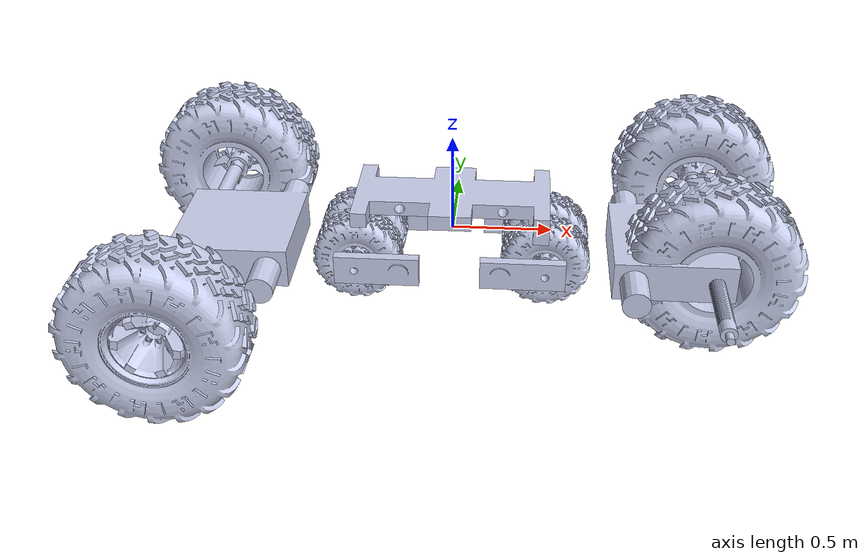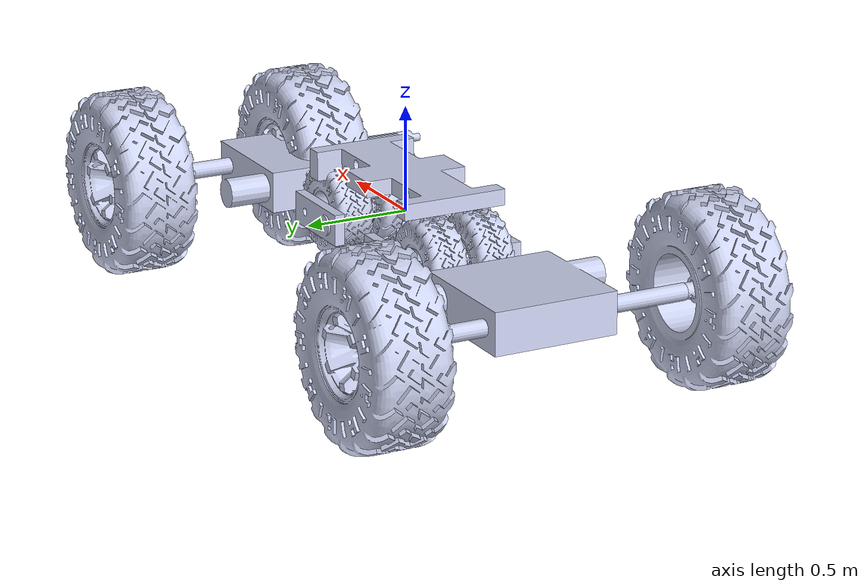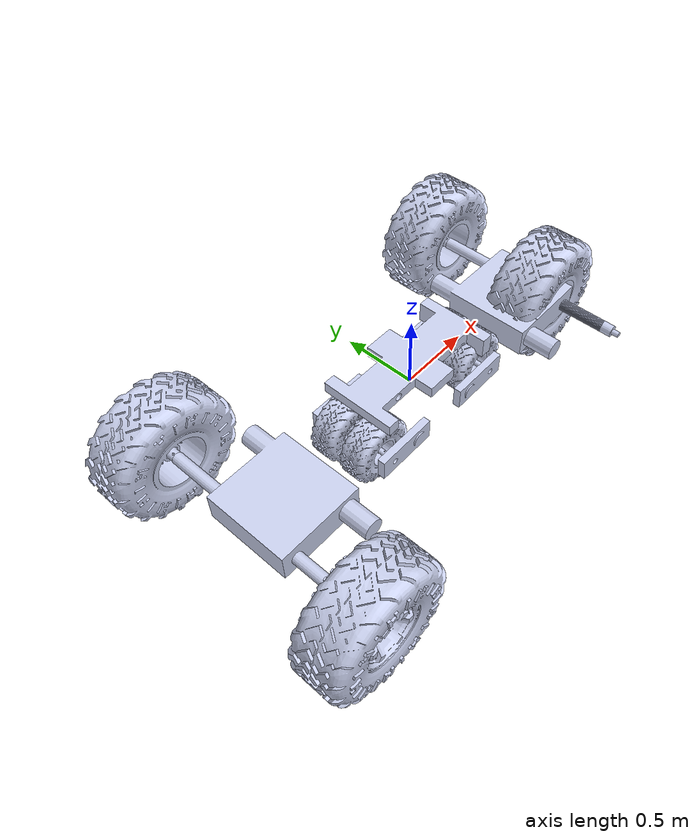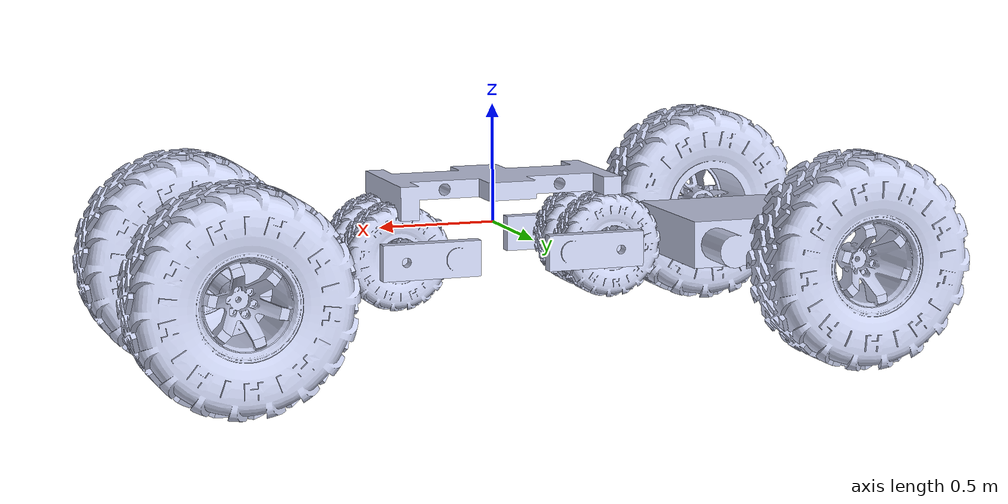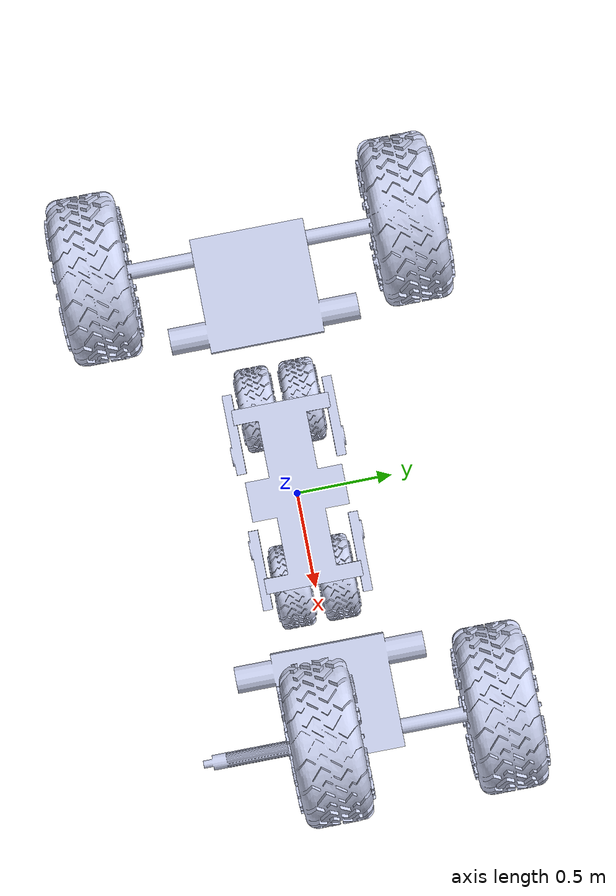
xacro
<?xml version="1.0" encoding="utf-8"?>
<robot
  name="optimus_corrected_origin" xmlns:xacro="http://ros.org/wiki/xacro">

  <!-- Bring in simulation data for Gazebo. -->
  <xacro:include filename="$(find optimus_corrected_origin)/urdf/optimus_corrected_origin.gazebo" />

  <link
    name="base_link">
  </link>

  <joint name="base_link_joint" type="fixed">
    <origin xyz="0 0 0" rpy="0 0 0" />
    <parent link="base_link"/>
    <child link="chassis_link" />
  </joint>

  <link
    name="chassis_link">
    <inertial>
      <origin
        xyz="0.00027198 0 -0.1"
        rpy="0 0 0" />
      <mass
        value="144.39" />
      <inertia
        ixx="0.9898"
        ixy="-4.8728E-16"
        ixz="-3.8733E-16"
        iyy="11.564"
        iyz="1.3264E-17"
        izz="11.526" />
    </inertial>
    <visual>
      <origin
        xyz="0 0 0"
        rpy="0 0 0" />
      <geometry>
        <mesh
          filename="package://optimus_corrected_origin/meshes/chassis_link.STL" />
      </geometry>
      <material
        name="">
        <color
          rgba="0.79216 0.81961 0.93333 1" />
      </material>
    </visual>
    <collision>
      <origin
        xyz="0 0 0"
        rpy="0 0 0" />
      <geometry>
        <mesh
          filename="package://optimus_corrected_origin/meshes/chassis_link.STL" />
      </geometry>
    </collision>
  </link>

  <link
    name="F_bogie_link">
    <inertial>
      <origin
        xyz="-0.024416 2.2204E-16 -0.1"
        rpy="0 0 0" />
      <mass
        value="75.142" />
      <inertia
        ixx="3.3216"
        ixy="-2.8318E-16"
        ixz="-1.0263E-16"
        iyy="2.4935"
        iyz="-3.1203E-18"
        izz="5.3225" />
    </inertial>
    <visual>
      <origin
        xyz="0 0 0"
        rpy="0 0 0" />
      <geometry>
        <mesh
          filename="package://optimus_corrected_origin/meshes/F_bogie_link.STL" />
      </geometry>
      <material
        name="">
        <color
          rgba="0.79216 0.81961 0.93333 1" />
      </material>
    </visual>
    <collision>
      <origin
        xyz="0 0 0"
        rpy="0 0 0" />
      <geometry>
        <mesh
          filename="package://optimus_corrected_origin/meshes/F_bogie_link.STL" />
      </geometry>
    </collision>
  </link>

  <joint
    name="F_bogie_joint"
    type="fixed">
    <origin
      xyz="1.1 0 0"
      rpy="0 0 0" />
    <parent
      link="chassis_link" />
    <child
      link="F_bogie_link" />
    <axis
      xyz="0 0 0" />
  </joint>

  <link
    name="FR_outer_wheel_connector_link">
    <inertial>
      <origin
        xyz="-1.85268467234323E-15 0.206818181818182 4.10782519111308E-15"
        rpy="0 0 0" />
      <mass
        value="2.07345115136926" />
      <inertia
        ixx="0.0307163509718099"
        ixy="1.36572961430801E-17"
        ixz="3.68922553198698E-20"
        iyy="0.00162106180925233"
        iyz="-4.74701603502452E-17"
        izz="0.0307163509718099" />
    </inertial>
    <visual>
      <origin
        xyz="0 0 0"
        rpy="0 0 0" />
      <geometry>
        <mesh
          filename="package://optimus_corrected_origin/meshes/FR_outer_wheel_connector_link.STL" />
      </geometry>
      <material
        name="">
        <color
          rgba="0.792156862745098 0.819607843137255 0.933333333333333 1" />
      </material>
    </visual>
    <collision>
      <origin
        xyz="0 0 0"
        rpy="0 0 0" />
      <geometry>
        <mesh
          filename="package://optimus_corrected_origin/meshes/FR_outer_wheel_connector_link.STL" />
      </geometry>
    </collision>
  </link>

  <joint
    name="FR_outer_wheel_connector_joint"
    type="fixed">
    <origin
      xyz="0.2 0.3 -0.1"
      rpy="0 0 0" />
    <parent
      link="F_bogie_link" />
    <child
      link="FR_outer_wheel_connector_link" />
    <axis
      xyz="0 0 0" />
  </joint>

  <link
    name="FR_outer_wheel_link">
    <inertial>
      <origin
        xyz="7.94662217230846E-07 0.201565805423125 -3.29128348464103E-06"
        rpy="0 0 0" />
      <mass
        value="39.6885330149725" />
      <inertia
        ixx="2.95667434379043"
        ixy="-1.79772249602782E-06"
        ixz="-4.34948566726761E-06"
        iyy="4.63080044138697"
        iyz="7.42030339833979E-06"
        izz="2.95669122576413" />
    </inertial>
    <visual>
      <origin
        xyz="0 0 0"
        rpy="0 0 0" />
      <geometry>
        <mesh
          filename="package://optimus_corrected_origin/meshes/FR_outer_wheel_link.STL" />
      </geometry>
      <material
        name="">
        <color
          rgba="0.792156862745098 0.819607843137255 0.933333333333333 1" />
      </material>
    </visual>
    <collision>
      <origin
        xyz="0 0 0"
        rpy="0 0 0" />
      <geometry>
        <mesh
          filename="package://optimus_corrected_origin/meshes/FR_outer_wheel_link.STL" />
      </geometry>
    </collision>
  </link>

  <joint
    name="FR_outer_wheel_joint"
    type="continuous">
    <origin
      xyz="0 0.32674 0"
      rpy="0 0 0" />
    <parent
      link="FR_outer_wheel_connector_link" />
    <child
      link="FR_outer_wheel_link" />
    <axis
      xyz="0 1 0" />
  </joint>

  <transmission name="FR_outer_wheel_trans">
    <type>transmission_interface/SimpleTransmission</type>
    <joint name="FR_outer_wheel_joint">
      <hardwareInterface>hardware_interface/VelocityJointInterface</hardwareInterface>
    </joint>
    <actuator name="FR_outer_wheel_actuator">
      <mechanicalReduction>1</mechanicalReduction>
      <hardwareInterface>hardware_interface/VelocityJointInterface</hardwareInterface>
    </actuator>
  </transmission>

  <link
    name="FL_outer_wheel_connector_link">
    <inertial>
      <origin
        xyz="-5.37070388162419E-15 -0.206818181818182 6.77236045021345E-15"
        rpy="0 0 0" />
      <mass
        value="2.07345115136926" />
      <inertia
        ixx="0.0307163509718099"
        ixy="8.97759060052446E-18"
        ixz="-1.25952034604741E-19"
        iyy="0.00162106180925233"
        iyz="2.16951266466499E-17"
        izz="0.0307163509718099" />
    </inertial>
    <visual>
      <origin
        xyz="0 0 0"
        rpy="0 0 0" />
      <geometry>
        <mesh
          filename="package://optimus_corrected_origin/meshes/FL_outer_wheel_connector_link.STL" />
      </geometry>
      <material
        name="">
        <color
          rgba="0.792156862745098 0.819607843137255 0.933333333333333 1" />
      </material>
    </visual>
    <collision>
      <origin
        xyz="0 0 0"
        rpy="0 0 0" />
      <geometry>
        <mesh
          filename="package://optimus_corrected_origin/meshes/FL_outer_wheel_connector_link.STL" />
      </geometry>
    </collision>
  </link>

  <joint
    name="FL_outer_wheel_connector_joint"
    type="fixed">
    <origin
      xyz="0.2 -0.3 -0.1"
      rpy="0 0 0" />
    <parent
      link="F_bogie_link" />
    <child
      link="FL_outer_wheel_connector_link" />
    <axis
      xyz="0 0 0" />
  </joint>

  <link
    name="FL_outer_wheel_link">
    <inertial>
      <origin
        xyz="-2.92249659344934E-06 -0.201565805423117 -1.70969258106446E-06"
        rpy="0 0 0" />
      <mass
        value="39.6885330149755" />
      <inertia
        ixx="2.95668745449248"
        ixy="-6.59311314635011E-06"
        ixz="8.26813447856092E-06"
        iyy="4.63080044138726"
        iyz="-3.85013865752919E-06"
        izz="2.95667811506248" />
    </inertial>
    <visual>
      <origin
        xyz="0 0 0"
        rpy="0 0 0" />
      <geometry>
        <mesh
          filename="package://optimus_corrected_origin/meshes/FL_outer_wheel_link.STL" />
      </geometry>
      <material
        name="">
        <color
          rgba="0.792156862745098 0.819607843137255 0.933333333333333 1" />
      </material>
    </visual>
    <collision>
      <origin
        xyz="0 0 0"
        rpy="0 0 0" />
      <geometry>
        <mesh
          filename="package://optimus_corrected_origin/meshes/FL_outer_wheel_link.STL" />
      </geometry>
    </collision>
  </link>

  <joint
    name="FL_outer_wheel_joint"
    type="continuous">
    <origin
      xyz="0 -0.32674 0"
      rpy="0 0 0" />
    <parent
      link="FL_outer_wheel_connector_link" />
    <child
      link="FL_outer_wheel_link" />
    <axis
      xyz="0 -1 0" />
  </joint>

  <transmission name="FL_outer_wheel_trans">
    <type>transmission_interface/SimpleTransmission</type>
    <joint name="FL_outer_wheel_joint">
      <hardwareInterface>hardware_interface/VelocityJointInterface</hardwareInterface>
    </joint>
    <actuator name="FL_outer_wheel_actuator">
      <mechanicalReduction>1</mechanicalReduction>
      <hardwareInterface>hardware_interface/VelocityJointInterface</hardwareInterface>
    </actuator>
  </transmission>

  <link
    name="R_bogie_link">
    <inertial>
      <origin
        xyz="0.0244164389508561 1.11022302462516E-16 -0.0999999999999998"
        rpy="0 0 0" />
      <mass
        value="75.1415926535897" />
      <inertia
        ixx="3.32158725212812"
        ixy="1.04663201039582E-16"
        ixz="-6.0439083476423E-17"
        iyy="2.49354029185103"
        iyz="1.38285501712138E-16"
        izz="5.32245435921456" />
    </inertial>
    <visual>
      <origin
        xyz="0 0 0"
        rpy="0 0 0" />
      <geometry>
        <mesh
          filename="package://optimus_corrected_origin/meshes/R_bogie_link.STL" />
      </geometry>
      <material
        name="">
        <color
          rgba="0.792156862745098 0.819607843137255 0.933333333333333 1" />
      </material>
    </visual>
    <collision>
      <origin
        xyz="0 0 0"
        rpy="0 0 0" />
      <geometry>
        <mesh
          filename="package://optimus_corrected_origin/meshes/R_bogie_link.STL" />
      </geometry>
    </collision>
  </link>

  <joint
    name="R_bogie_joint"
    type="fixed">
    <origin
      xyz="-1.1 0 0"
      rpy="0 0 0" />
    <parent
      link="chassis_link" />
    <child
      link="R_bogie_link" />
    <axis
      xyz="0 0 0" />
  </joint>

  <link
    name="RL_outer_wheel_connector_link">
    <inertial>
      <origin
        xyz="-4.44089209850063E-16 0.206818181818182 2.22044604925031E-16"
        rpy="0 0 0" />
      <mass
        value="2.07345115136926" />
      <inertia
        ixx="0.0307163509718099"
        ixy="-1.54925599286273E-17"
        ixz="7.77880648044805E-20"
        iyy="0.00162106180925233"
        iyz="-2.30745184784673E-17"
        izz="0.0307163509718099" />
    </inertial>
    <visual>
      <origin
        xyz="0 0 0"
        rpy="0 0 0" />
      <geometry>
        <mesh
          filename="package://optimus_corrected_origin/meshes/RL_outer_wheel_connector_link.STL" />
      </geometry>
      <material
        name="">
        <color
          rgba="0.792156862745098 0.819607843137255 0.933333333333333 1" />
      </material>
    </visual>
    <collision>
      <origin
        xyz="0 0 0"
        rpy="0 0 0" />
      <geometry>
        <mesh
          filename="package://optimus_corrected_origin/meshes/RL_outer_wheel_connector_link.STL" />
      </geometry>
    </collision>
  </link>

  <joint
    name="RL_outer_wheel_connector_joint"
    type="fixed">
    <origin
      xyz="-0.2 0.3 -0.1"
      rpy="0 0 0" />
    <parent
      link="R_bogie_link" />
    <child
      link="RL_outer_wheel_connector_link" />
    <axis
      xyz="0 0 0" />
  </joint>

  <link
    name="RL_outer_wheel_link">
    <inertial>
      <origin
        xyz="1.05037916053874E-06 0.201565805282954 -3.21870601693863E-06"
        rpy="0 0 0" />
      <mass
        value="39.6885328227854" />
      <inertia
        ixx="2.95667512850444"
        ixy="-2.37453572280207E-06"
        ixz="-5.61709097472745E-06"
        iyy="4.63080044108311"
        iyz="7.25624788537814E-06"
        izz="2.95669044061308" />
    </inertial>
    <visual>
      <origin
        xyz="0 0 0"
        rpy="0 0 0" />
      <geometry>
        <mesh
          filename="package://optimus_corrected_origin/meshes/RL_outer_wheel_link.STL" />
      </geometry>
      <material
        name="">
        <color
          rgba="0.792156862745098 0.819607843137255 0.933333333333333 1" />
      </material>
    </visual>
    <collision>
      <origin
        xyz="0 0 0"
        rpy="0 0 0" />
      <geometry>
        <mesh
          filename="package://optimus_corrected_origin/meshes/RL_outer_wheel_link.STL" />
      </geometry>
    </collision>
  </link>

  <joint
    name="RL_outer_wheel_joint"
    type="continuous">
    <origin
      xyz="0 0.32674 0"
      rpy="0 0 0" />
    <parent
      link="RL_outer_wheel_connector_link" />
    <child
      link="RL_outer_wheel_link" />
    <axis
      xyz="0 1 0" />
  </joint>

  <transmission name="RL_outer_wheel_trans">
    <type>transmission_interface/SimpleTransmission</type>
    <joint name="RL_outer_wheel_joint">
      <hardwareInterface>hardware_interface/VelocityJointInterface</hardwareInterface>
    </joint>
    <actuator name="RL_outer_wheel_actuator">
      <mechanicalReduction>1</mechanicalReduction>
      <hardwareInterface>hardware_interface/VelocityJointInterface</hardwareInterface>
    </actuator>
  </transmission>

  <link
    name="RR_outer_wheel_connector_link">
    <inertial>
      <origin
        xyz="1.33226762955019E-15 -0.206818181818182 -1.11022302462516E-16"
        rpy="0 0 0" />
      <mass
        value="2.07345115136926" />
      <inertia
        ixx="0.0307163509718099"
        ixy="3.02822472609956E-18"
        ixz="1.04996792420079E-20"
        iyy="0.00162106180925233"
        iyz="1.93901600133467E-17"
        izz="0.0307163509718099" />
    </inertial>
    <visual>
      <origin
        xyz="0 0 0"
        rpy="0 0 0" />
      <geometry>
        <mesh
          filename="package://optimus_corrected_origin/meshes/RR_outer_wheel_connector_link.STL" />
      </geometry>
      <material
        name="">
        <color
          rgba="0.792156862745098 0.819607843137255 0.933333333333333 1" />
      </material>
    </visual>
    <collision>
      <origin
        xyz="0 0 0"
        rpy="0 0 0" />
      <geometry>
        <mesh
          filename="package://optimus_corrected_origin/meshes/RR_outer_wheel_connector_link.STL" />
      </geometry>
    </collision>
  </link>

  <joint
    name="RR_outer_wheel_connector_joint"
    type="fixed">
    <origin
      xyz="-0.2 -0.3 -0.1"
      rpy="0 0 0" />
    <parent
      link="R_bogie_link" />
    <child
      link="RR_outer_wheel_connector_link" />
    <axis
      xyz="0 0 0" />
  </joint>

  <link
    name="RR_outer_wheel_link">
    <inertial>
      <origin
        xyz="-3.13523784090108E-06 -0.201565805423125 -1.27840475139251E-06"
        rpy="0 0 0" />
      <mass
        value="39.6885330149728" />
      <inertia
        ixx="2.95668958616865"
        ixy="-7.07207631433677E-06"
        ixz="6.62641370626784E-06"
        iyy="4.630800441387"
        iyz="-2.87722872087634E-06"
        izz="2.95667598338593" />
    </inertial>
    <visual>
      <origin
        xyz="0 0 0"
        rpy="0 0 0" />
      <geometry>
        <mesh
          filename="package://optimus_corrected_origin/meshes/RR_outer_wheel_link.STL" />
      </geometry>
      <material
        name="">
        <color
          rgba="0.792156862745098 0.819607843137255 0.933333333333333 1" />
      </material>
    </visual>
    <collision>
      <origin
        xyz="0 0 0"
        rpy="0 0 0" />
      <geometry>
        <mesh
          filename="package://optimus_corrected_origin/meshes/RR_outer_wheel_link.STL" />
      </geometry>
    </collision>
  </link>

  <joint
    name="RR_outer_wheel_joint"
    type="continuous">
    <origin
      xyz="0 -0.32674 0"
      rpy="0 0 0" />
    <parent
      link="RR_outer_wheel_connector_link" />
    <child
      link="RR_outer_wheel_link" />
    <axis
      xyz="0 -1 0" />
  </joint>

  <transmission name="RR_outer_wheel_trans">
    <type>transmission_interface/SimpleTransmission</type>
    <joint name="RR_outer_wheel_joint">
      <hardwareInterface>hardware_interface/VelocityJointInterface</hardwareInterface>
    </joint>
    <actuator name="RR_outer_wheel_actuator">
      <mechanicalReduction>1</mechanicalReduction>
      <hardwareInterface>hardware_interface/VelocityJointInterface</hardwareInterface>
    </actuator>
  </transmission>

  <link
    name="FL_inner_wheel_connector_link">
    <inertial>
      <origin
        xyz="0.20508770745258 0.000744286749609024 -1.11022302462516E-16"
        rpy="0 0 0" />
      <mass
        value="3.16570796326795" />
      <inertia
        ixx="0.00666180087935192"
        ixy="0.000247607077286714"
        ixz="1.6098074917693E-19"
        iyy="0.0524105342655653"
        iyz="6.75526439645087E-19"
        izz="0.0471742267451069" />
    </inertial>
    <visual>
      <origin
        xyz="0 0 0"
        rpy="0 0 0" />
      <geometry>
        <mesh
          filename="package://optimus_corrected_origin/meshes/FL_inner_wheel_connector_link.STL" />
      </geometry>
      <material
        name="">
        <color
          rgba="0.792156862745098 0.819607843137255 0.933333333333333 1" />
      </material>
    </visual>
    <collision>
      <origin
        xyz="0 0 0"
        rpy="0 0 0" />
      <geometry>
        <mesh
          filename="package://optimus_corrected_origin/meshes/FL_inner_wheel_connector_link.STL" />
      </geometry>
    </collision>
  </link>

  <joint
    name="FL_inner_wheel_connector_joint"
    type="fixed">
    <origin
      xyz="0.15 0.265 -0.1"
      rpy="0 0 0" />
    <parent
      link="chassis_link" />
    <child
      link="FL_inner_wheel_connector_link" />
    <axis
      xyz="0 0 0" />
  </joint>

  <link
    name="FL_inner_wheel_link">
    <inertial>
      <origin
        xyz="-2.22300115826357E-06 -0.122556778342617 -2.50814959334988E-06"
        rpy="0 0 0" />
      <mass
        value="5.0050487689712" />
      <inertia
        ixx="0.0924066318833436"
        ixy="-1.58412736937296E-07"
        ixz="2.94669651268579E-07"
        iyy="0.144720367774976"
        iyz="-1.78414903657771E-07"
        izz="0.092406701876922" />
    </inertial>
    <visual>
      <origin
        xyz="0 0 0"
        rpy="0 0 0" />
      <geometry>
        <mesh
          filename="package://optimus_corrected_origin/meshes/FL_inner_wheel_link.STL" />
      </geometry>
      <material
        name="">
        <color
          rgba="0.792156862745098 0.819607843137255 0.933333333333333 1" />
      </material>
    </visual>
    <collision>
      <origin
        xyz="0 0 0"
        rpy="0 0 0" />
      <geometry>
        <mesh
          filename="package://optimus_corrected_origin/meshes/FL_inner_wheel_link.STL" />
      </geometry>
    </collision>
  </link>

  <joint
    name="FL_inner_wheel_joint"
    type="continuous">
    <origin
      xyz="0.32 -0.025 0"
      rpy="0 0 0" />
    <parent
      link="FL_inner_wheel_connector_link" />
    <child
      link="FL_inner_wheel_link" />
    <axis
      xyz="0 -1 0" />
  </joint>

  <link
    name="FR_inner_wheel_connector_link">
    <inertial>
      <origin
        xyz="0.20508770745258 -0.000744286749609135 1.11022302462516E-16"
        rpy="0 0 0" />
      <mass
        value="3.16570796326795" />
      <inertia
        ixx="0.0066618008793519"
        ixy="-0.000247607077286714"
        ixz="-1.17700602431743E-18"
        iyy="0.0524105342655651"
        iyz="-4.08407090334487E-19"
        izz="0.0471742267451067" />
    </inertial>
    <visual>
      <origin
        xyz="0 0 0"
        rpy="0 0 0" />
      <geometry>
        <mesh
          filename="package://optimus_corrected_origin/meshes/FR_inner_wheel_connector_link.STL" />
      </geometry>
      <material
        name="">
        <color
          rgba="0.792156862745098 0.819607843137255 0.933333333333333 1" />
      </material>
    </visual>
    <collision>
      <origin
        xyz="0 0 0"
        rpy="0 0 0" />
      <geometry>
        <mesh
          filename="package://optimus_corrected_origin/meshes/FR_inner_wheel_connector_link.STL" />
      </geometry>
    </collision>
  </link>

  <joint
    name="FR_inner_wheel_connector_joint"
    type="fixed">
    <origin
      xyz="0.15 -0.265 -0.1"
      rpy="0 0 0" />
    <parent
      link="chassis_link" />
    <child
      link="FR_inner_wheel_connector_link" />
    <axis
      xyz="0 0 0" />
  </joint>

  <link
    name="FR_inner_wheel_link">
    <inertial>
      <origin
        xyz="-3.31118514906859E-06 0.122556779088169 -5.18267951332696E-07"
        rpy="0 0 0" />
      <mass
        value="5.00504892402194" />
      <inertia
        ixx="0.0924069493556727"
        ixy="2.35690015618929E-07"
        ixz="9.12031624363562E-08"
        iyy="0.144720367920832"
        iyz="3.71035989474246E-08"
        izz="0.0924063846028681" />
    </inertial>
    <visual>
      <origin
        xyz="0 0 0"
        rpy="0 0 0" />
      <geometry>
        <mesh
          filename="package://optimus_corrected_origin/meshes/FR_inner_wheel_link.STL" />
      </geometry>
      <material
        name="">
        <color
          rgba="0.792156862745098 0.819607843137255 0.933333333333333 1" />
      </material>
    </visual>
    <collision>
      <origin
        xyz="0 0 0"
        rpy="0 0 0" />
      <geometry>
        <mesh
          filename="package://optimus_corrected_origin/meshes/FR_inner_wheel_link.STL" />
      </geometry>
    </collision>
  </link>

  <joint
    name="FR_inner_wheel_joint"
    type="continuous">
    <origin
      xyz="0.32 0.025 0"
      rpy="0 0 0" />
    <parent
      link="FR_inner_wheel_connector_link" />
    <child
      link="FR_inner_wheel_link" />
    <axis
      xyz="0 1 0" />
  </joint>

  <link
    name="RL_inner_wheel_connector_link">
    <inertial>
      <origin
        xyz="-0.20508770745258 0.000744286749609246 0"
        rpy="0 0 0" />
      <mass
        value="3.16570796326795" />
      <inertia
        ixx="0.00666180087935194"
        ixy="-0.000247607077286711"
        ixz="-8.57886467619125E-18"
        iyy="0.0524105342655653"
        iyz="-2.27692614209372E-18"
        izz="0.0471742267451069" />
    </inertial>
    <visual>
      <origin
        xyz="0 0 0"
        rpy="0 0 0" />
      <geometry>
        <mesh
          filename="package://optimus_corrected_origin/meshes/RL_inner_wheel_connector_link.STL" />
      </geometry>
      <material
        name="">
        <color
          rgba="0.792156862745098 0.819607843137255 0.933333333333333 1" />
      </material>
    </visual>
    <collision>
      <origin
        xyz="0 0 0"
        rpy="0 0 0" />
      <geometry>
        <mesh
          filename="package://optimus_corrected_origin/meshes/RL_inner_wheel_connector_link.STL" />
      </geometry>
    </collision>
  </link>

  <joint
    name="RL_inner_wheel_connector_joint"
    type="fixed">
    <origin
      xyz="-0.15 0.265 -0.1"
      rpy="0 0 0" />
    <parent
      link="chassis_link" />
    <child
      link="RL_inner_wheel_connector_link" />
    <axis
      xyz="0 0 0" />
  </joint>

  <link
    name="RL_inner_wheel_link">
    <inertial>
      <origin
        xyz="2.39870415552623E-06 -0.122556778342622 2.34067658932968E-06"
        rpy="0 0 0" />
      <mass
        value="5.00504876897168" />
      <inertia
        ixx="0.0924066747929623"
        ixy="1.70910468737889E-07"
        ixz="2.96635054499153E-07"
        iyy="0.144720367774988"
        iyz="1.66481485161672E-07"
        izz="0.0924066589673187" />
    </inertial>
    <visual>
      <origin
        xyz="0 0 0"
        rpy="0 0 0" />
      <geometry>
        <mesh
          filename="package://optimus_corrected_origin/meshes/RL_inner_wheel_link.STL" />
      </geometry>
      <material
        name="">
        <color
          rgba="0.792156862745098 0.819607843137255 0.933333333333333 1" />
      </material>
    </visual>
    <collision>
      <origin
        xyz="0 0 0"
        rpy="0 0 0" />
      <geometry>
        <mesh
          filename="package://optimus_corrected_origin/meshes/RL_inner_wheel_link.STL" />
      </geometry>
    </collision>
  </link>

  <joint
    name="RL_inner_wheel_joint"
    type="continuous">
    <origin
      xyz="-0.32 -0.025 0"
      rpy="0 0 0" />
    <parent
      link="RL_inner_wheel_connector_link" />
    <child
      link="RL_inner_wheel_link" />
    <axis
      xyz="0 -1 0" />
  </joint>

  <link
    name="RR_inner_wheel_connector_link">
    <inertial>
      <origin
        xyz="-0.20508770745258 -0.000744286749609135 1.11022302462516E-16"
        rpy="0 0 0" />
      <mass
        value="3.16570796326795" />
      <inertia
        ixx="0.00666180087935192"
        ixy="0.000247607077286714"
        ixz="3.34428024835884E-18"
        iyy="0.0524105342655651"
        iyz="-2.59900485902853E-19"
        izz="0.0471742267451067" />
    </inertial>
    <visual>
      <origin
        xyz="0 0 0"
        rpy="0 0 0" />
      <geometry>
        <mesh
          filename="package://optimus_corrected_origin/meshes/RR_inner_wheel_connector_link.STL" />
      </geometry>
      <material
        name="">
        <color
          rgba="0.792156862745098 0.819607843137255 0.933333333333333 1" />
      </material>
    </visual>
    <collision>
      <origin
        xyz="0 0 0"
        rpy="0 0 0" />
      <geometry>
        <mesh
          filename="package://optimus_corrected_origin/meshes/RR_inner_wheel_connector_link.STL" />
      </geometry>
    </collision>
  </link>

  <joint
    name="RR_inner_wheel_connector_joint"
    type="fixed">
    <origin
      xyz="-0.15 -0.265 -0.1"
      rpy="0 0 0" />
    <parent
      link="chassis_link" />
    <child
      link="RR_inner_wheel_connector_link" />
    <axis
      xyz="0 0 0" />
  </joint>

  <link
    name="RR_inner_wheel_link">
    <inertial>
      <origin
        xyz="1.24620017638577E-07 0.122556779088174 -3.34918177913313E-06"
        rpy="0 0 0" />
      <mass
        value="5.00504892402154" />
      <inertia
        ixx="0.0924063711022311"
        ixy="-9.08227080992973E-09"
        ixz="-2.26104982609489E-08"
        iyy="0.144720367920822"
        iyz="2.38419740676118E-07"
        izz="0.0924069628562967" />
    </inertial>
    <visual>
      <origin
        xyz="0 0 0"
        rpy="0 0 0" />
      <geometry>
        <mesh
          filename="package://optimus_corrected_origin/meshes/RR_inner_wheel_link.STL" />
      </geometry>
      <material
        name="">
        <color
          rgba="0.792156862745098 0.819607843137255 0.933333333333333 1" />
      </material>
    </visual>
    <collision>
      <origin
        xyz="0 0 0"
        rpy="0 0 0" />
      <geometry>
        <mesh
          filename="package://optimus_corrected_origin/meshes/RR_inner_wheel_link.STL" />
      </geometry>
    </collision>
  </link>

  <joint
    name="RR_inner_wheel_joint"
    type="continuous">
    <origin
      xyz="-0.32 0.025 0"
      rpy="0 0 0" />
    <parent
      link="RR_inner_wheel_connector_link" />
    <child
      link="RR_inner_wheel_link" />
    <axis
      xyz="0 1 0" />
  </joint>
</robot>
